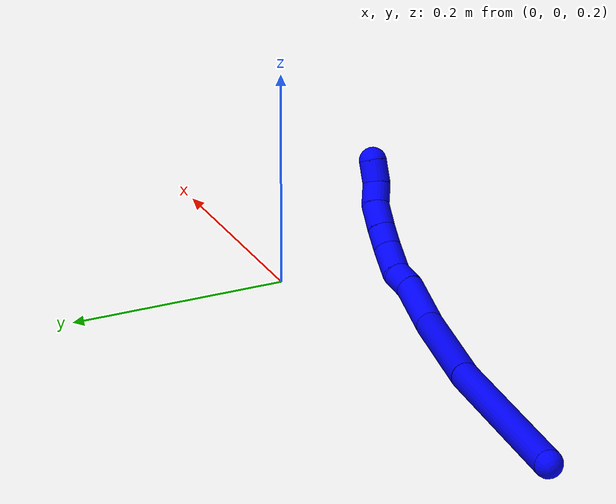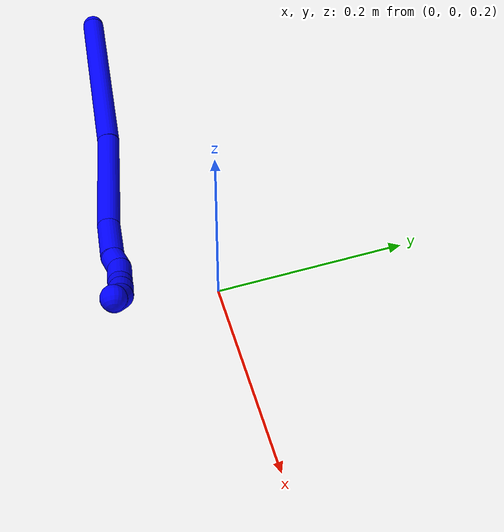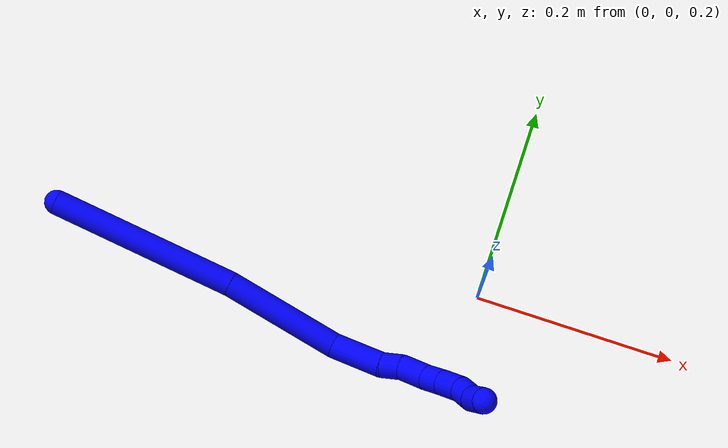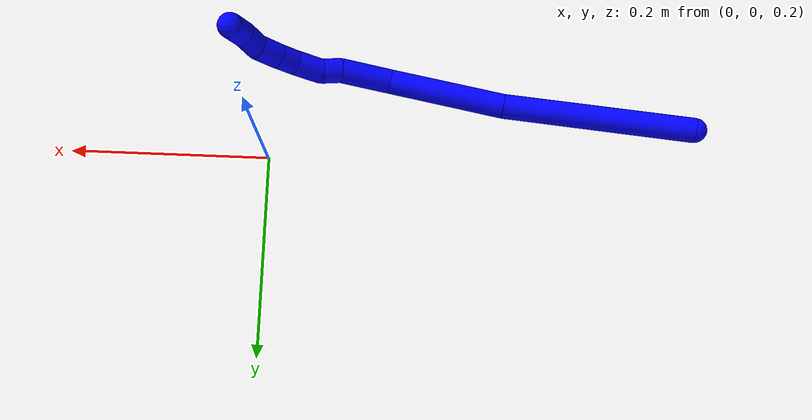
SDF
<sdf version="1.7">
 <world name="default">
  <plugin name="TubeGeneratorPlugin" filename="libtube_generator_plugin.so"/>
  <model name="photoneo_s_sensor">
   <static>1</static>
   <pose>0 0 2 1.57079 1.57079 3.14159</pose>
   <link name="link">
    <inertial><mass>0.1</mass></inertial>
    <sensor name="sensor" type="depth">
     <update_rate>30</update_rate>
     <camera>
      <horizontal_fov>1.22</horizontal_fov>
      <image><width>1920</width><height>1200</height><format>B8G8R8</format></image>
      <clip><near>0.1</near><far>4</far></clip>
      <depth_camera><output>points</output></depth_camera>
     </camera>
     <plugin name="camera_plugin" filename="libgazebo_ros_depth_camera.so">
      <baseline>0.2</baseline>
      <alwaysOn>1</alwaysOn>
      <updateRate>0.0</updateRate>
      <cameraName>camera_ir</cameraName>
      <imageTopicName>/camera/color/image_raw</imageTopicName>
      <cameraInfoTopicName>/camera/color/camera_info</cameraInfoTopicName>
      <depthImageTopicName>/camera/depth/image_raw</depthImageTopicName>
      <depthImageCameraInfoTopicName>/camera/depth/camera_info</depthImageCameraInfoTopicName>
      <pointCloudTopicName>/camera/depth/points</pointCloudTopicName>
      <frameName>fr_optical</frameName>
      <pointCloudCutoff>0.1</pointCloudCutoff>
      <pointCloudCutoffMax>2.0</pointCloudCutoffMax>
      <distortionK1>0</distortionK1>
      <distortionK2>0</distortionK2>
      <distortionK3>0</distortionK3>
      <distortionT1>0</distortionT1>
      <distortionT2>0</distortionT2>
      <CxPrime>0</CxPrime>
      <Cx>0</Cx>
      <Cy>0</Cy>
      <focalLength>0</focalLength>
      <hackBaseline>0</hackBaseline>
     </plugin>
    </sensor>
   </link>
  </model>
  <gravity>0 0 -9.8</gravity>
  <magnetic_field>6e-06 2.3e-05 -4.2e-05</magnetic_field>
  <atmosphere type="adiabatic"/>
  <physics name="default_physics" default="0" type="ode">
   <max_step_size>0.003</max_step_size>
   <real_time_factor>1</real_time_factor>
   <real_time_update_rate>1000</real_time_update_rate>
   <max_contacts>10000</max_contacts>
   <ode>
    <solver>
     <type>quick</type>
     <iters>100</iters>
     <sor>1.3</sor>
     <use_dynamic_moi_rescaling>0</use_dynamic_moi_rescaling>
    </solver>
    <constraints>
     <contact_max_correcting_vel>0</contact_max_correcting_vel>
     <contact_surface_layer>0.001</contact_surface_layer>
     <cfm>0</cfm>
     <erp>0.2</erp>
    </constraints>
   </ode>
  </physics>
  <scene><ambient>0.4 0.4 0.4 1</ambient><background>0.7 0.7 0.7 1</background><shadows>0</shadows></scene>
  <audio><device>default</device></audio>
  <spherical_coordinates>
   <surface_model>EARTH_WGS84</surface_model>
   <latitude_deg>0</latitude_deg>
   <longitude_deg>0</longitude_deg>
   <elevation>0</elevation>
   <heading_deg>0</heading_deg>
  </spherical_coordinates>
  <model name="bin">
   <static>1</static>
   <link name="bottom">
    <collision name="collision-bottom">
     <pose>0 0 -0.01 0 -0 0</pose>
     <geometry><box><size>0.8 0.6 0.02</size></box></geometry>
     <surface>
      <friction><ode><mu>100</mu><mu2>100</mu2></ode></friction>
      <contact><collide_bitmask>65535</collide_bitmask></contact>
     </surface>
    </collision>
   </link>
   <link name="west_wall">
    <collision name="collision-west_wall">
     <pose>-0.41 0 0.1 0 -0 0</pose>
     <geometry><box><size>0.02 0.6 0.2</size></box></geometry>
     <surface>
      <friction><ode><mu>100</mu><mu2>100</mu2></ode></friction>
      <contact><collide_bitmask>65535</collide_bitmask></contact>
     </surface>
    </collision>
   </link>
   <link name="east_wall">
    <collision name="collision-east_wall">
     <pose>0.41 0 0.1 0 -0 0</pose>
     <geometry><box><size>0.02 0.6 0.2</size></box></geometry>
     <surface>
      <friction><ode><mu>100</mu><mu2>100</mu2></ode></friction>
      <contact><collide_bitmask>65535</collide_bitmask></contact>
     </surface>
    </collision>
   </link>
   <link name="south_wall">
    <collision name="collision-south_wall">
     <pose>0 -0.31 0.1 0 -0 0</pose>
     <geometry><box><size>0.8 0.02 0.2</size></box></geometry>
     <surface>
      <friction><ode><mu>100</mu><mu2>100</mu2></ode></friction>
      <contact><collide_bitmask>65535</collide_bitmask></contact>
     </surface>
    </collision>
   </link>
   <link name="north_wall">
    <collision name="collision-north_wall">
     <pose>0 0.31 0.1 0 -0 0</pose>
     <geometry><box><size>0.8 0.02 0.2</size></box></geometry>
     <surface>
      <friction><ode><mu>100</mu><mu2>100</mu2></ode></friction>
      <contact><collide_bitmask>65535</collide_bitmask></contact>
     </surface>
    </collision>
   </link>
  </model>
  <model name="1">
   <static>0</static>
   <link name="1">
    <collision name="collision-cylinder-e_1_1_4">
     <pose>0.000137 0.003143 -0.095693 -3.10876 0.001434 -0.087323</pose>
     <geometry><cylinder><radius>0.0125</radius><length>0.19149</length></cylinder></geometry>
     <surface>
      <friction><ode><mu>1.16</mu><mu2>1.16</mu2><slip1>0</slip1><slip2>0</slip2></ode></friction>
      <contact><ode><kp>1e+06</kp><kd>1</kd><max_vel>0</max_vel><min_depth>0.001</min_depth></ode></contact>
     </surface>
    </collision>
    <visual name="visual-cylinder-e_1_1_4">
     <pose>0.000137 0.003143 -0.095693 -3.10876 0.001434 -0.087323</pose>
     <geometry><cylinder><radius>0.0125</radius><length>0.19149</length></cylinder></geometry>
     <material><ambient>0 0 1 1</ambient></material>
    </visual>
    <collision name="collision-cylinder-e_2_4_5">
     <pose>-0.000553 0.002627 -0.250978 3.08027 -0.013869 -0.44474</pose>
     <geometry><cylinder><radius>0.0125</radius><length>0.119418</length></cylinder></geometry>
     <surface>
      <friction><ode><mu>1.16</mu><mu2>1.16</mu2><slip1>0</slip1><slip2>0</slip2></ode></friction>
      <contact><ode><kp>1e+06</kp><kd>1</kd><max_vel>0</max_vel><min_depth>0.001</min_depth></ode></contact>
     </surface>
    </collision>
    <visual name="visual-cylinder-e_2_4_5">
     <pose>-0.000553 0.002627 -0.250978 3.08027 -0.013869 -0.44474</pose>
     <geometry><cylinder><radius>0.0125</radius><length>0.119418</length></cylinder></geometry>
     <material><ambient>0 0 1 1</ambient></material>
    </visual>
    <collision name="collision-cylinder-e_3_5_6">
     <pose>0.007007 -0.00116 -0.335821 3.13653 0.320738 3.1103</pose>
     <geometry><cylinder><radius>0.0125</radius><length>0.053218</length></cylinder></geometry>
     <surface>
      <friction><ode><mu>1.16</mu><mu2>1.16</mu2><slip1>0</slip1><slip2>0</slip2></ode></friction>
      <contact><ode><kp>1e+06</kp><kd>1</kd><max_vel>0</max_vel><min_depth>0.001</min_depth></ode></contact>
     </surface>
    </collision>
    <visual name="visual-cylinder-e_3_5_6">
     <pose>0.007007 -0.00116 -0.335821 3.13653 0.320738 3.1103</pose>
     <geometry><cylinder><radius>0.0125</radius><length>0.053218</length></cylinder></geometry>
     <material><ambient>0 0 1 1</ambient></material>
    </visual>
    <collision name="collision-cylinder-e_4_6_7">
     <pose>0.019135 0.001359 -0.370371 -2.86433 0.369024 -1.85768</pose>
     <geometry><cylinder><radius>0.0125</radius><length>0.020731</length></cylinder></geometry>
     <surface>
      <friction><ode><mu>1.16</mu><mu2>1.16</mu2><slip1>0</slip1><slip2>0</slip2></ode></friction>
      <contact><ode><kp>1e+06</kp><kd>1</kd><max_vel>0</max_vel><min_depth>0.001</min_depth></ode></contact>
     </surface>
    </collision>
    <visual name="visual-cylinder-e_4_6_7">
     <pose>0.019135 0.001359 -0.370371 -2.86433 0.369024 -1.85768</pose>
     <geometry><cylinder><radius>0.0125</radius><length>0.020731</length></cylinder></geometry>
     <material><ambient>0 0 1 1</ambient></material>
    </visual>
    <collision name="collision-cylinder-e_5_7_8">
     <pose>0.02999 0.002976 -0.392385 3.06086 0.508785 2.83342</pose>
     <geometry><cylinder><radius>0.0125</radius><length>0.029216</length></cylinder></geometry>
     <surface>
      <friction><ode><mu>1.16</mu><mu2>1.16</mu2><slip1>0</slip1><slip2>0</slip2></ode></friction>
      <contact><ode><kp>1e+06</kp><kd>1</kd><max_vel>0</max_vel><min_depth>0.001</min_depth></ode></contact>
     </surface>
    </collision>
    <visual name="visual-cylinder-e_5_7_8">
     <pose>0.02999 0.002976 -0.392385 3.06086 0.508785 2.83342</pose>
     <geometry><cylinder><radius>0.0125</radius><length>0.029216</length></cylinder></geometry>
     <material><ambient>0 0 1 1</ambient></material>
    </visual>
    <collision name="collision-cylinder-e_6_8_9">
     <pose>0.044014 0.001353 -0.41263 3.06285 0.740878 2.93943</pose>
     <geometry><cylinder><radius>0.0125</radius><length>0.020471</length></cylinder></geometry>
     <surface>
      <friction><ode><mu>1.16</mu><mu2>1.16</mu2><slip1>0</slip1><slip2>0</slip2></ode></friction>
      <contact><ode><kp>1e+06</kp><kd>1</kd><max_vel>0</max_vel><min_depth>0.001</min_depth></ode></contact>
     </surface>
    </collision>
    <visual name="visual-cylinder-e_6_8_9">
     <pose>0.044014 0.001353 -0.41263 3.06285 0.740878 2.93943</pose>
     <geometry><cylinder><radius>0.0125</radius><length>0.020471</length></cylinder></geometry>
     <material><ambient>0 0 1 1</ambient></material>
    </visual>
    <collision name="collision-cylinder-e_7_9_10">
     <pose>0.059039 -0.000421 -0.428886 3.00711 0.74467 2.8001</pose>
     <geometry><cylinder><radius>0.0125</radius><length>0.023952</length></cylinder></geometry>
     <surface>
      <friction><ode><mu>1.16</mu><mu2>1.16</mu2><slip1>0</slip1><slip2>0</slip2></ode></friction>
      <contact><ode><kp>1e+06</kp><kd>1</kd><max_vel>0</max_vel><min_depth>0.001</min_depth></ode></contact>
     </surface>
    </collision>
    <visual name="visual-cylinder-e_7_9_10">
     <pose>0.059039 -0.000421 -0.428886 3.00711 0.74467 2.8001</pose>
     <geometry><cylinder><radius>0.0125</radius><length>0.023952</length></cylinder></geometry>
     <material><ambient>0 0 1 1</ambient></material>
    </visual>
    <collision name="collision-cylinder-e_8_10_11">
     <pose>0.074459 -0.00525 -0.443588 2.59345 0.806554 1.97632</pose>
     <geometry><cylinder><radius>0.0125</radius><length>0.020236</length></cylinder></geometry>
     <surface>
      <friction><ode><mu>1.16</mu><mu2>1.16</mu2><slip1>0</slip1><slip2>0</slip2></ode></friction>
      <contact><ode><kp>1e+06</kp><kd>1</kd><max_vel>0</max_vel><min_depth>0.001</min_depth></ode></contact>
     </surface>
    </collision>
    <visual name="visual-cylinder-e_8_10_11">
     <pose>0.074459 -0.00525 -0.443588 2.59345 0.806554 1.97632</pose>
     <geometry><cylinder><radius>0.0125</radius><length>0.020236</length></cylinder></geometry>
     <material><ambient>0 0 1 1</ambient></material>
    </visual>
    <collision name="collision-cylinder-e_9_11_2">
     <pose>0.091213 -0.010133 -0.454283 2.88586 1.09431 2.72561</pose>
     <geometry><cylinder><radius>0.0125</radius><length>0.021268</length></cylinder></geometry>
     <surface>
      <friction><ode><mu>1.16</mu><mu2>1.16</mu2><slip1>0</slip1><slip2>0</slip2></ode></friction>
      <contact><ode><kp>1e+06</kp><kd>1</kd><max_vel>0</max_vel><min_depth>0.001</min_depth></ode></contact>
     </surface>
    </collision>
    <visual name="visual-cylinder-e_9_11_2">
     <pose>0.091213 -0.010133 -0.454283 2.88586 1.09431 2.72561</pose>
     <geometry><cylinder><radius>0.0125</radius><length>0.021268</length></cylinder></geometry>
     <material><ambient>0 0 1 1</ambient></material>
    </visual>
    <collision name="collision-sphere-2">
     <pose>0.100663 -0.011367 -0.459002 0 -0 0</pose>
     <geometry><sphere><radius>0.0125</radius></sphere></geometry>
     <surface>
      <friction><ode><mu>1.16</mu><mu2>1.16</mu2><slip1>0</slip1><slip2>0</slip2></ode></friction>
      <contact><ode><kp>1e+06</kp><kd>1</kd><max_vel>0</max_vel><min_depth>0.001</min_depth></ode></contact>
     </surface>
    </collision>
    <visual name="visual-sphere-2">
     <pose>0.100663 -0.011367 -0.459002 0 -0 0</pose>
     <geometry><sphere><radius>0.0125</radius></sphere></geometry>
     <material><ambient>0 0 1 1</ambient></material>
    </visual>
    <collision name="collision-sphere-11">
     <pose>0.081763 -0.008899 -0.449564 0 -0 0</pose>
     <geometry><sphere><radius>0.0125</radius></sphere></geometry>
     <surface>
      <friction><ode><mu>1.16</mu><mu2>1.16</mu2><slip1>0</slip1><slip2>0</slip2></ode></friction>
      <contact><ode><kp>1e+06</kp><kd>1</kd><max_vel>0</max_vel><min_depth>0.001</min_depth></ode></contact>
     </surface>
    </collision>
    <visual name="visual-sphere-11">
     <pose>0.081763 -0.008899 -0.449564 0 -0 0</pose>
     <geometry><sphere><radius>0.0125</radius></sphere></geometry>
     <material><ambient>0 0 1 1</ambient></material>
    </visual>
    <collision name="collision-sphere-10">
     <pose>0.067155 -0.001602 -0.437613 0 -0 0</pose>
     <geometry><sphere><radius>0.0125</radius></sphere></geometry>
     <surface>
      <friction><ode><mu>1.16</mu><mu2>1.16</mu2><slip1>0</slip1><slip2>0</slip2></ode></friction>
      <contact><ode><kp>1e+06</kp><kd>1</kd><max_vel>0</max_vel><min_depth>0.001</min_depth></ode></contact>
     </surface>
    </collision>
    <visual name="visual-sphere-10">
     <pose>0.067155 -0.001602 -0.437613 0 -0 0</pose>
     <geometry><sphere><radius>0.0125</radius></sphere></geometry>
     <material><ambient>0 0 1 1</ambient></material>
    </visual>
    <collision name="collision-sphere-9">
     <pose>0.050922 0.000759 -0.420159 0 -0 0</pose>
     <geometry><sphere><radius>0.0125</radius></sphere></geometry>
     <surface>
      <friction><ode><mu>1.16</mu><mu2>1.16</mu2><slip1>0</slip1><slip2>0</slip2></ode></friction>
      <contact><ode><kp>1e+06</kp><kd>1</kd><max_vel>0</max_vel><min_depth>0.001</min_depth></ode></contact>
     </surface>
    </collision>
    <visual name="visual-sphere-9">
     <pose>0.050922 0.000759 -0.420159 0 -0 0</pose>
     <geometry><sphere><radius>0.0125</radius></sphere></geometry>
     <material><ambient>0 0 1 1</ambient></material>
    </visual>
    <collision name="collision-sphere-4">
     <pose>0.000275 0.006286 -0.191387 0 -0 0</pose>
     <geometry><sphere><radius>0.0125</radius></sphere></geometry>
     <surface>
      <friction><ode><mu>1.16</mu><mu2>1.16</mu2><slip1>0</slip1><slip2>0</slip2></ode></friction>
      <contact><ode><kp>1e+06</kp><kd>1</kd><max_vel>0</max_vel><min_depth>0.001</min_depth></ode></contact>
     </surface>
    </collision>
    <visual name="visual-sphere-4">
     <pose>0.000275 0.006286 -0.191387 0 -0 0</pose>
     <geometry><sphere><radius>0.0125</radius></sphere></geometry>
     <material><ambient>0 0 1 1</ambient></material>
    </visual>
    <collision name="collision-sphere-1">
     <geometry><sphere><radius>0.0125</radius></sphere></geometry>
     <surface>
      <friction><ode><mu>1.16</mu><mu2>1.16</mu2><slip1>0</slip1><slip2>0</slip2></ode></friction>
      <contact><ode><kp>1e+06</kp><kd>1</kd><max_vel>0</max_vel><min_depth>0.001</min_depth></ode></contact>
     </surface>
    </collision>
    <visual name="visual-sphere-1">
     <geometry><sphere><radius>0.0125</radius></sphere></geometry>
     <material><ambient>0 0 1 1</ambient></material>
    </visual>
    <collision name="collision-sphere-8">
     <pose>0.037106 0.001948 -0.405101 0 -0 0</pose>
     <geometry><sphere><radius>0.0125</radius></sphere></geometry>
     <surface>
      <friction><ode><mu>1.16</mu><mu2>1.16</mu2><slip1>0</slip1><slip2>0</slip2></ode></friction>
      <contact><ode><kp>1e+06</kp><kd>1</kd><max_vel>0</max_vel><min_depth>0.001</min_depth></ode></contact>
     </surface>
    </collision>
    <visual name="visual-sphere-8">
     <pose>0.037106 0.001948 -0.405101 0 -0 0</pose>
     <geometry><sphere><radius>0.0125</radius></sphere></geometry>
     <material><ambient>0 0 1 1</ambient></material>
    </visual>
    <collision name="collision-sphere-5">
     <pose>-0.001382 -0.001032 -0.310569 0 -0 0</pose>
     <geometry><sphere><radius>0.0125</radius></sphere></geometry>
     <surface>
      <friction><ode><mu>1.16</mu><mu2>1.16</mu2><slip1>0</slip1><slip2>0</slip2></ode></friction>
      <contact><ode><kp>1e+06</kp><kd>1</kd><max_vel>0</max_vel><min_depth>0.001</min_depth></ode></contact>
     </surface>
    </collision>
    <visual name="visual-sphere-5">
     <pose>-0.001382 -0.001032 -0.310569 0 -0 0</pose>
     <geometry><sphere><radius>0.0125</radius></sphere></geometry>
     <material><ambient>0 0 1 1</ambient></material>
    </visual>
    <collision name="collision-sphere-6">
     <pose>0.015396 -0.001287 -0.361072 0 -0 0</pose>
     <geometry><sphere><radius>0.0125</radius></sphere></geometry>
     <surface>
      <friction><ode><mu>1.16</mu><mu2>1.16</mu2><slip1>0</slip1><slip2>0</slip2></ode></friction>
      <contact><ode><kp>1e+06</kp><kd>1</kd><max_vel>0</max_vel><min_depth>0.001</min_depth></ode></contact>
     </surface>
    </collision>
    <visual name="visual-sphere-6">
     <pose>0.015396 -0.001287 -0.361072 0 -0 0</pose>
     <geometry><sphere><radius>0.0125</radius></sphere></geometry>
     <material><ambient>0 0 1 1</ambient></material>
    </visual>
    <collision name="collision-sphere-7">
     <pose>0.022874 0.004005 -0.379669 0 -0 0</pose>
     <geometry><sphere><radius>0.0125</radius></sphere></geometry>
     <surface>
      <friction><ode><mu>1.16</mu><mu2>1.16</mu2><slip1>0</slip1><slip2>0</slip2></ode></friction>
      <contact><ode><kp>1e+06</kp><kd>1</kd><max_vel>0</max_vel><min_depth>0.001</min_depth></ode></contact>
     </surface>
    </collision>
    <visual name="visual-sphere-7">
     <pose>0.022874 0.004005 -0.379669 0 -0 0</pose>
     <geometry><sphere><radius>0.0125</radius></sphere></geometry>
     <material><ambient>0 0 1 1</ambient></material>
    </visual>
    <inertial>
     <pose>0.014736 0.00133 -0.245334 0 -0 0</pose>
     <mass>0.5</mass>
     <inertia>
      <ixx>0.000597</ixx>
      <ixy>0</ixy>
      <ixz>0</ixz>
      <iyy>-0.000811</iyy>
      <iyz>0</iyz>
      <izz>-5.6e-05</izz>
     </inertia>
    </inertial>
   </link>
   <pose>-0.426085 -0.04246 0.213759 -1.16583 -1.40743 1.0241</pose>
  </model>
 </world>
</sdf>
